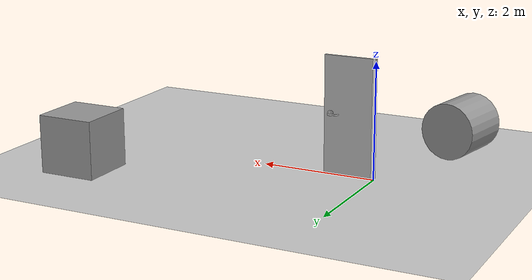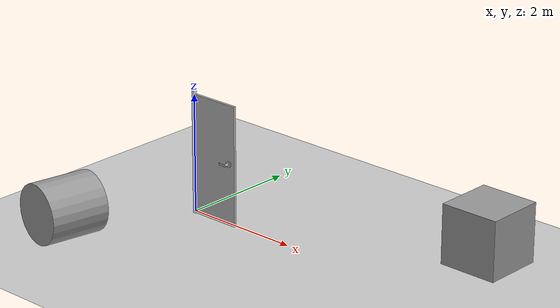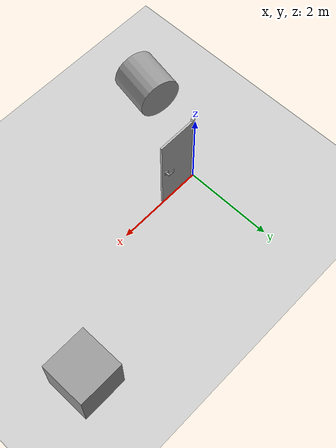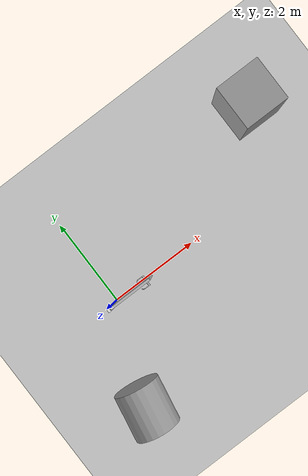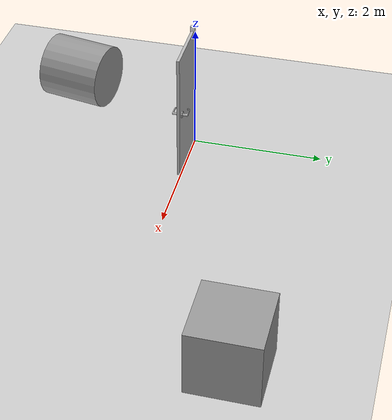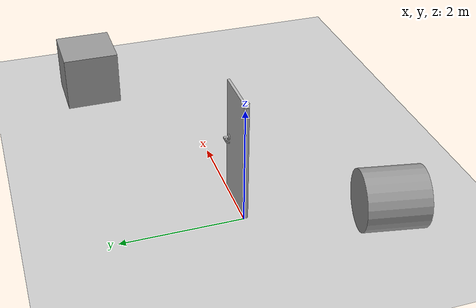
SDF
<sdf version="1.6">
 <world name="default">
  <light name="sun" type="directional">
   <pose>0 0 10 0 -0 0</pose>
   <diffuse>0.8 0.8 0.8 1</diffuse>
   <specular>0.2 0.2 0.2 1</specular>
   <attenuation>
    <range>1000</range>
    <constant>0.9</constant>
    <linear>0.01</linear>
    <quadratic>0.001</quadratic>
   </attenuation>
   <direction>-0.5 0.1 -0.9</direction>
  </light>
  <model name="ground_plane">
   <static>1</static>
   <link name="link">
    <collision name="collision">
     <geometry><plane><normal>0 0 1</normal><size>100 100</size></plane></geometry>
     <surface><friction><ode><mu>100</mu><mu2>50</mu2></ode></friction></surface>
    </collision>
    <visual name="visual">
     <cast_shadows>0</cast_shadows>
     <geometry><plane><normal>0 0 1</normal><size>100 100</size></plane></geometry>
     <material>
      <script><uri>file://media/materials/scripts/gazebo.material</uri><name>Gazebo/Grey</name></script>
     </material>
    </visual>
   </link>
  </model>
  <gravity>0 0 -9.8</gravity>
  <magnetic_field>6e-06 2.3e-05 -4.2e-05</magnetic_field>
  <atmosphere type="adiabatic"/>
  <physics name="default_physics" default="0" type="ode">
   <max_step_size>0.001</max_step_size>
   <real_time_factor>1</real_time_factor>
   <real_time_update_rate>1000</real_time_update_rate>
  </physics>
  <scene><ambient>0.4 0.4 0.4 1</ambient><background>0.7 0.7 0.7 1</background><shadows>1</shadows></scene>
  <audio><device>default</device></audio>
  <spherical_coordinates>
   <surface_model>EARTH_WGS84</surface_model>
   <latitude_deg>0</latitude_deg>
   <longitude_deg>0</longitude_deg>
   <elevation>0</elevation>
   <heading_deg>0</heading_deg>
  </spherical_coordinates>
  <model name="unit_cylinder">
   <pose>-0.787867 -2.1097 0.5 1.5708 -0.205857 -0.182767</pose>
   <link name="link">
    <inertial>
     <mass>1</mass>
     <inertia><ixx>0.145833</ixx><ixy>0</ixy><ixz>0</ixz><iyy>0.145833</iyy><iyz>0</iyz><izz>0.125</izz></inertia>
    </inertial>
    <collision name="collision">
     <geometry><cylinder><radius>0.5</radius><length>1</length></cylinder></geometry>
    </collision>
    <visual name="visual">
     <geometry><cylinder><radius>0.5</radius><length>1</length></cylinder></geometry>
     <material>
      <script><name>Gazebo/Grey</name><uri>file://media/materials/scripts/gazebo.material</uri></script>
     </material>
    </visual>
   </link>
  </model>
  <model name="unit_box">
   <pose>4.66068 1.60554 0.5 0 -0 -0.000677</pose>
   <link name="link">
    <inertial>
     <mass>1</mass>
     <inertia>
      <ixx>0.166667</ixx>
      <ixy>0</ixy>
      <ixz>0</ixz>
      <iyy>0.166667</iyy>
      <iyz>0</iyz>
      <izz>0.166667</izz>
     </inertia>
    </inertial>
    <collision name="collision"><geometry><box><size>1 1 1</size></box></geometry></collision>
    <visual name="visual">
     <geometry><box><size>1 1 1</size></box></geometry>
     <material>
      <script><name>Gazebo/Grey</name><uri>file://media/materials/scripts/gazebo.material</uri></script>
     </material>
    </visual>
   </link>
  </model>
  <model name="drc_practice_weighted_door">
   <link name="frame">
    <pose>0.06 -0.0005 0 0 -0 0</pose>
    <inertial>
     <pose>-0.025145 -0.03429 1.0541 0 -0 0</pose>
     <mass>19</mass>
     <inertia>
      <ixx>7.04458</ixx>
      <ixy>0</ixy>
      <ixz>0</ixz>
      <iyy>7.04114</iyy>
      <iyz>0</iyz>
      <izz>0.0114511</izz>
     </inertia>
    </inertial>
    <collision name="collision_2">
     <pose>-0.025145 -0.03429 1.0541 0 -0 0</pose>
     <geometry><box><size>0.05029 0.06858 2.1082</size></box></geometry>
    </collision>
    <visual name="visual">
     <pose>-0.025145 -0.03429 1.0541 0 -0 0</pose>
     <geometry><box><size>0.05029 0.06858 2.1082</size></box></geometry>
     <material>
      <script><uri>file://media/materials/scripts/gazebo.material</uri><name>Gazebo/White</name></script>
     </material>
    </visual>
   </link>
   <link name="door">
    <pose>-0 0 2.04 3.14159 -0 0</pose>
    <inertial>
     <mass>41.3256</mass>
     <pose>0.4569 0.0349 1.016 0 -0 0</pose>
     <inertia><ixx>14.2263</ixx><ixy>0</ixy><ixz>0</ixz><iyy>17.099</iyy><iyz>0</iyz><izz>2.88626</izz></inertia>
    </inertial>
    <collision name="collision">
     <pose>0.4569 0.0349 1.016 0 -0 0</pose>
     <geometry><box><size>0.9144 0.04445 2.032</size></box></geometry>
    </collision>
    <visual name="visual">
     <pose>0 -0.06858 0 0 -0 0</pose>
     <geometry><mesh><uri>model://hinged_door/meshes/door.dae</uri></mesh></geometry>
    </visual>
   </link>
   <link name="handles">
    <pose>0.8144 -0.07 1.05 0 -0 3.14159</pose>
    <inertial>
     <pose>0 -0.035 0 0 -0 0</pose>
     <mass>2</mass>
     <inertia>
      <ixx>0.0110115</ixx>
      <ixy>-0</ixy>
      <ixz>-0.00647057</ixz>
      <iyy>0.0190181</iyy>
      <iyz>0</iyz>
      <izz>0.00824372</izz>
     </inertia>
    </inertial>
    <collision name="handle1_collision">
     <pose>0.015 -0.015 0 -1.57 0 0</pose>
     <geometry><mesh><uri>model://door_handle/meshes/handle.dae</uri></mesh></geometry>
    </collision>
    <visual name="handle1_visual">
     <pose>0.015 -0.015 0 -1.57 0 0</pose>
     <geometry><mesh><uri>model://door_handle/meshes/handle.dae</uri></mesh></geometry>
    </visual>
    <collision name="handle2_collision">
     <pose>0.015 -0.055 0 1.57 -0 0</pose>
     <geometry><mesh><uri>model://door_handle/meshes/handle.dae</uri></mesh></geometry>
    </collision>
    <visual name="handle2_visual">
     <pose>0.015 -0.055 0 1.57 -0 0</pose>
     <geometry><mesh><uri>model://door_handle/meshes/handle.dae</uri></mesh></geometry>
    </visual>
   </link>
   <joint name="handle" type="revolute">
    <parent>door</parent>
    <child>handles</child>
    <pose>0.015 0 0 0 -0 0</pose>
    <axis>
     <xyz>0 1 0</xyz>
     <limit><lower>-1.58</lower><upper>0</upper></limit>
     <dynamics>
      <damping>1</damping>
      <friction>10</friction>
      <spring_reference>0</spring_reference>
      <spring_stiffness>0</spring_stiffness>
     </dynamics>
     <use_parent_model_frame>1</use_parent_model_frame>
     <use_parent_model_frame>1</use_parent_model_frame>
    </axis>
    <physics><ode><cfm_damping>1</cfm_damping><limit><cfm>0</cfm><erp>0.2</erp></limit></ode></physics>
   </joint>
   <joint name="hinge" type="revolute">
    <parent>frame</parent>
    <child>door</child>
    <axis>
     <xyz>0 0 1</xyz>
     <limit><lower>-1.58</lower><upper>0</upper></limit>
     <dynamics>
      <damping>15.5365</damping>
      <friction>15.5365</friction>
      <spring_reference>0</spring_reference>
      <spring_stiffness>0</spring_stiffness>
     </dynamics>
     <use_parent_model_frame>1</use_parent_model_frame>
     <use_parent_model_frame>1</use_parent_model_frame>
    </axis>
    <physics><ode><cfm_damping>1</cfm_damping><limit><cfm>0</cfm><erp>0.2</erp></limit></ode></physics>
   </joint>
   <joint name="world_joint" type="revolute">
    <child>frame</child>
    <parent>world</parent>
    <axis>
     <limit><lower>0</lower><upper>0</upper></limit>
     <xyz>0 1 0</xyz>
     <dynamics>
      <damping>1</damping>
      <spring_reference>0</spring_reference>
      <spring_stiffness>0</spring_stiffness>
     </dynamics>
     <use_parent_model_frame>1</use_parent_model_frame>
     <use_parent_model_frame>1</use_parent_model_frame>
    </axis>
    <physics><ode><cfm_damping>1</cfm_damping><limit><cfm>0</cfm><erp>0.2</erp></limit></ode></physics>
   </joint>
  </model>
 </world>
</sdf>
